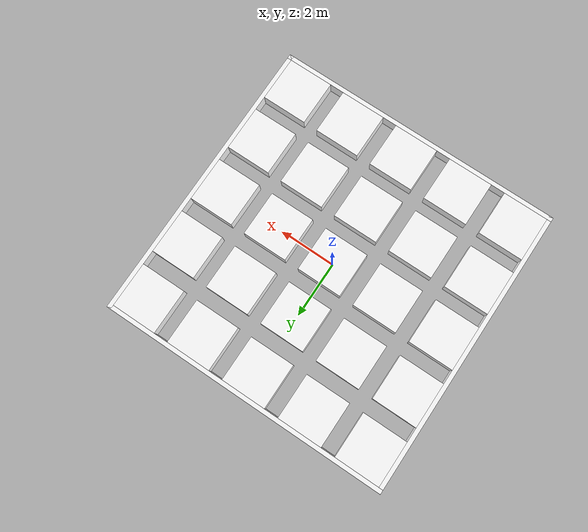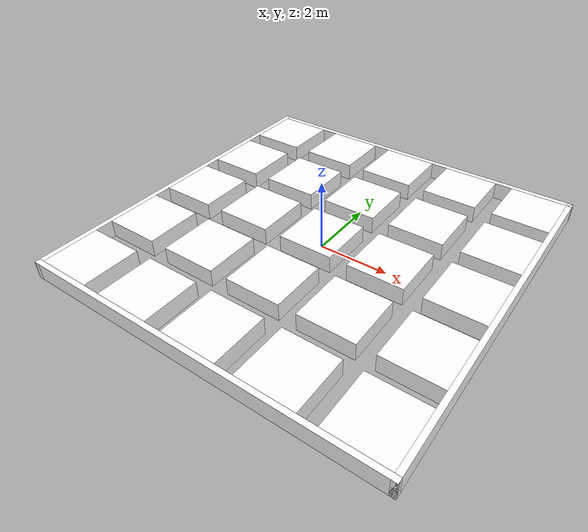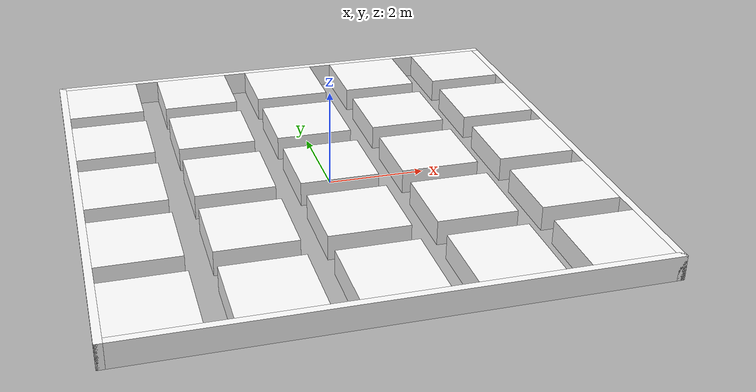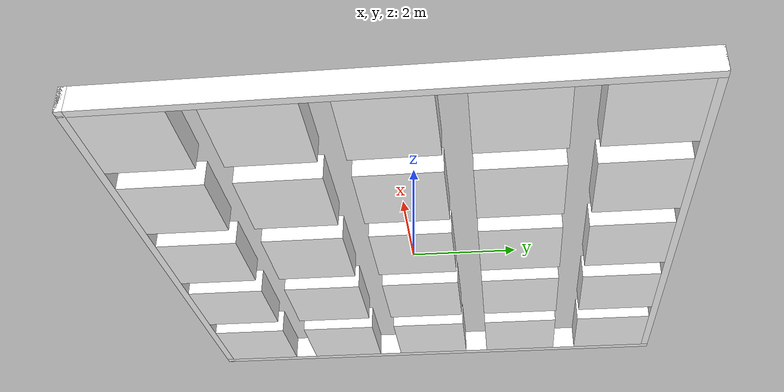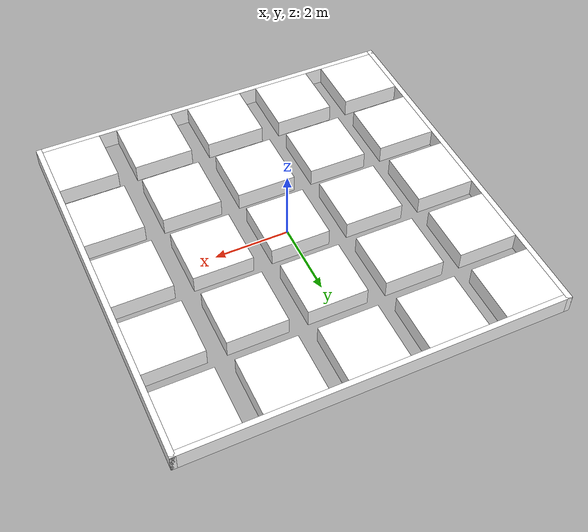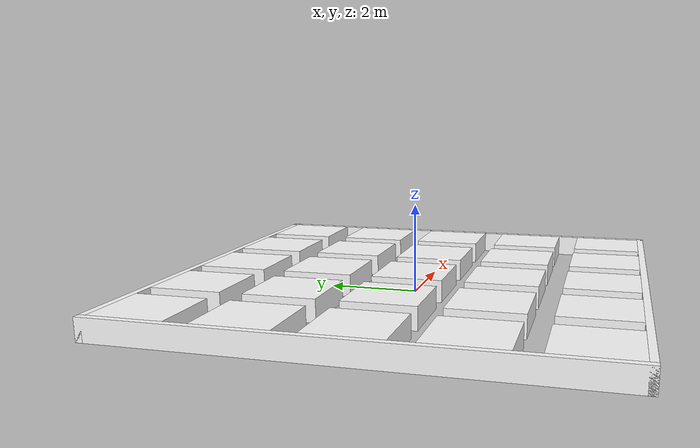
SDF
<?xml version="1.0" ?>
<sdf version="1.6">
  <!--Generated City-->
  <model name="city">
    <pose frame="">0 0 0 0 -0 0</pose>
    <link name="Wall_0_0">
      <collision name="Wall_0_0_Collision">
        <geometry>
          <box>
            <size>0.15 10.3 0.5</size>
          </box>
        </geometry>
        <pose frame="">0 0 0 0 -0 0</pose>
      </collision>
      <visual name="Wall_0_0_Visual">
        <pose frame="">0 0 0 0 -0 0</pose>
        <geometry>
          <box>
            <size>0.15 10.3 0.5</size>
          </box>
        </geometry>
        <material>
          <ambient>1 1 1 1</ambient>
        </material>
      </visual>
      <pose frame="">-5.075 0.0 0.25 0 -0 0</pose>
    </link>
    <link name="Wall_0_1">
      <collision name="Wall_0_1_Collision">
        <geometry>
          <box>
            <size>10.3 0.15 0.5</size>
          </box>
        </geometry>
        <pose frame="">0 0 0 0 -0 0</pose>
      </collision>
      <visual name="Wall_0_1_Visual">
        <pose frame="">0 0 0 0 -0 0</pose>
        <geometry>
          <box>
            <size>10.3 0.15 0.5</size>
          </box>
        </geometry>
        <material>
          <ambient>1 1 1 1</ambient>
        </material>
      </visual>
      <pose frame="">0.0 -5.075 0.25 0 -0 0</pose>
    </link>
    <link name="Wall_1_0">
      <collision name="Wall_1_0_Collision">
        <geometry>
          <box>
            <size>10.3 0.15 0.5</size>
          </box>
        </geometry>
        <pose frame="">0 0 0 0 -0 0</pose>
      </collision>
      <visual name="Wall_1_0_Visual">
        <pose frame="">0 0 0 0 -0 0</pose>
        <geometry>
          <box>
            <size>10.3 0.15 0.5</size>
          </box>
        </geometry>
        <material>
          <ambient>1 1 1 1</ambient>
        </material>
      </visual>
      <pose frame="">0.0 5.075 0.25 0 -0 0</pose>
    </link>
    <link name="Wall_1_1">
      <collision name="Wall_1_1_Collision">
        <geometry>
          <box>
            <size>0.15 10.3 0.5</size>
          </box>
        </geometry>
        <pose frame="">0 0 0 0 -0 0</pose>
      </collision>
      <visual name="Wall_1_1_Visual">
        <pose frame="">0 0 0 0 -0 0</pose>
        <geometry>
          <box>
            <size>0.15 10.3 0.5</size>
          </box>
        </geometry>
        <material>
          <ambient>1 1 1 1</ambient>
        </material>
      </visual>
      <pose frame="">5.075 0.0 0.25 0 -0 0</pose>
    </link>
    <link name="Box_-4.2_-4.2">
      <collision name="Box_-4.2_-4.2_Collision">
        <geometry>
          <box>
            <size>1.6 1.6 0.5</size>
          </box>
        </geometry>
        <pose frame="">0 0 0 0 -0 0</pose>
      </collision>
      <visual name="Box_-4.2_-4.2_Visual">
        <pose frame="">0 0 0 0 -0 0</pose>
        <geometry>
          <box>
            <size>1.6 1.6 0.5</size>
          </box>
        </geometry>
        <material>
          <ambient>1 1 1 1</ambient>
        </material>
      </visual>
      <pose frame="">-4.2 -4.2 0.25 0 -0 0</pose>
    </link>
    <link name="Box_-4.2_-2.1">
      <collision name="Box_-4.2_-2.1_Collision">
        <geometry>
          <box>
            <size>1.6 1.6 0.5</size>
          </box>
        </geometry>
        <pose frame="">0 0 0 0 -0 0</pose>
      </collision>
      <visual name="Box_-4.2_-2.1_Visual">
        <pose frame="">0 0 0 0 -0 0</pose>
        <geometry>
          <box>
            <size>1.6 1.6 0.5</size>
          </box>
        </geometry>
        <material>
          <ambient>1 1 1 1</ambient>
        </material>
      </visual>
      <pose frame="">-4.2 -2.1 0.25 0 -0 0</pose>
    </link>
    <link name="Box_-4.2_0.0">
      <collision name="Box_-4.2_0.0_Collision">
        <geometry>
          <box>
            <size>1.6 1.6 0.5</size>
          </box>
        </geometry>
        <pose frame="">0 0 0 0 -0 0</pose>
      </collision>
      <visual name="Box_-4.2_0.0_Visual">
        <pose frame="">0 0 0 0 -0 0</pose>
        <geometry>
          <box>
            <size>1.6 1.6 0.5</size>
          </box>
        </geometry>
        <material>
          <ambient>1 1 1 1</ambient>
        </material>
      </visual>
      <pose frame="">-4.2 0.0 0.25 0 -0 0</pose>
    </link>
    <link name="Box_-4.2_2.1">
      <collision name="Box_-4.2_2.1_Collision">
        <geometry>
          <box>
            <size>1.6 1.6 0.5</size>
          </box>
        </geometry>
        <pose frame="">0 0 0 0 -0 0</pose>
      </collision>
      <visual name="Box_-4.2_2.1_Visual">
        <pose frame="">0 0 0 0 -0 0</pose>
        <geometry>
          <box>
            <size>1.6 1.6 0.5</size>
          </box>
        </geometry>
        <material>
          <ambient>1 1 1 1</ambient>
        </material>
      </visual>
      <pose frame="">-4.2 2.1 0.25 0 -0 0</pose>
    </link>
    <link name="Box_-4.2_4.2">
      <collision name="Box_-4.2_4.2_Collision">
        <geometry>
          <box>
            <size>1.6 1.6 0.5</size>
          </box>
        </geometry>
        <pose frame="">0 0 0 0 -0 0</pose>
      </collision>
      <visual name="Box_-4.2_4.2_Visual">
        <pose frame="">0 0 0 0 -0 0</pose>
        <geometry>
          <box>
            <size>1.6 1.6 0.5</size>
          </box>
        </geometry>
        <material>
          <ambient>1 1 1 1</ambient>
        </material>
      </visual>
      <pose frame="">-4.2 4.2 0.25 0 -0 0</pose>
    </link>
    <link name="Box_-2.1_-4.2">
      <collision name="Box_-2.1_-4.2_Collision">
        <geometry>
          <box>
            <size>1.6 1.6 0.5</size>
          </box>
        </geometry>
        <pose frame="">0 0 0 0 -0 0</pose>
      </collision>
      <visual name="Box_-2.1_-4.2_Visual">
        <pose frame="">0 0 0 0 -0 0</pose>
        <geometry>
          <box>
            <size>1.6 1.6 0.5</size>
          </box>
        </geometry>
        <material>
          <ambient>1 1 1 1</ambient>
        </material>
      </visual>
      <pose frame="">-2.1 -4.2 0.25 0 -0 0</pose>
    </link>
    <link name="Box_-2.1_-2.1">
      <collision name="Box_-2.1_-2.1_Collision">
        <geometry>
          <box>
            <size>1.6 1.6 0.5</size>
          </box>
        </geometry>
        <pose frame="">0 0 0 0 -0 0</pose>
      </collision>
      <visual name="Box_-2.1_-2.1_Visual">
        <pose frame="">0 0 0 0 -0 0</pose>
        <geometry>
          <box>
            <size>1.6 1.6 0.5</size>
          </box>
        </geometry>
        <material>
          <ambient>1 1 1 1</ambient>
        </material>
      </visual>
      <pose frame="">-2.1 -2.1 0.25 0 -0 0</pose>
    </link>
    <link name="Box_-2.1_0.0">
      <collision name="Box_-2.1_0.0_Collision">
        <geometry>
          <box>
            <size>1.6 1.6 0.5</size>
          </box>
        </geometry>
        <pose frame="">0 0 0 0 -0 0</pose>
      </collision>
      <visual name="Box_-2.1_0.0_Visual">
        <pose frame="">0 0 0 0 -0 0</pose>
        <geometry>
          <box>
            <size>1.6 1.6 0.5</size>
          </box>
        </geometry>
        <material>
          <ambient>1 1 1 1</ambient>
        </material>
      </visual>
      <pose frame="">-2.1 0.0 0.25 0 -0 0</pose>
    </link>
    <link name="Box_-2.1_2.1">
      <collision name="Box_-2.1_2.1_Collision">
        <geometry>
          <box>
            <size>1.6 1.6 0.5</size>
          </box>
        </geometry>
        <pose frame="">0 0 0 0 -0 0</pose>
      </collision>
      <visual name="Box_-2.1_2.1_Visual">
        <pose frame="">0 0 0 0 -0 0</pose>
        <geometry>
          <box>
            <size>1.6 1.6 0.5</size>
          </box>
        </geometry>
        <material>
          <ambient>1 1 1 1</ambient>
        </material>
      </visual>
      <pose frame="">-2.1 2.1 0.25 0 -0 0</pose>
    </link>
    <link name="Box_-2.1_4.2">
      <collision name="Box_-2.1_4.2_Collision">
        <geometry>
          <box>
            <size>1.6 1.6 0.5</size>
          </box>
        </geometry>
        <pose frame="">0 0 0 0 -0 0</pose>
      </collision>
      <visual name="Box_-2.1_4.2_Visual">
        <pose frame="">0 0 0 0 -0 0</pose>
        <geometry>
          <box>
            <size>1.6 1.6 0.5</size>
          </box>
        </geometry>
        <material>
          <ambient>1 1 1 1</ambient>
        </material>
      </visual>
      <pose frame="">-2.1 4.2 0.25 0 -0 0</pose>
    </link>
    <link name="Box_0.0_-4.2">
      <collision name="Box_0.0_-4.2_Collision">
        <geometry>
          <box>
            <size>1.6 1.6 0.5</size>
          </box>
        </geometry>
        <pose frame="">0 0 0 0 -0 0</pose>
      </collision>
      <visual name="Box_0.0_-4.2_Visual">
        <pose frame="">0 0 0 0 -0 0</pose>
        <geometry>
          <box>
            <size>1.6 1.6 0.5</size>
          </box>
        </geometry>
        <material>
          <ambient>1 1 1 1</ambient>
        </material>
      </visual>
      <pose frame="">0.0 -4.2 0.25 0 -0 0</pose>
    </link>
    <link name="Box_0.0_-2.1">
      <collision name="Box_0.0_-2.1_Collision">
        <geometry>
          <box>
            <size>1.6 1.6 0.5</size>
          </box>
        </geometry>
        <pose frame="">0 0 0 0 -0 0</pose>
      </collision>
      <visual name="Box_0.0_-2.1_Visual">
        <pose frame="">0 0 0 0 -0 0</pose>
        <geometry>
          <box>
            <size>1.6 1.6 0.5</size>
          </box>
        </geometry>
        <material>
          <ambient>1 1 1 1</ambient>
        </material>
      </visual>
      <pose frame="">0.0 -2.1 0.25 0 -0 0</pose>
    </link>
    <link name="Box_0.0_0.0">
      <collision name="Box_0.0_0.0_Collision">
        <geometry>
          <box>
            <size>1.6 1.6 0.5</size>
          </box>
        </geometry>
        <pose frame="">0 0 0 0 -0 0</pose>
      </collision>
      <visual name="Box_0.0_0.0_Visual">
        <pose frame="">0 0 0 0 -0 0</pose>
        <geometry>
          <box>
            <size>1.6 1.6 0.5</size>
          </box>
        </geometry>
        <material>
          <ambient>1 1 1 1</ambient>
        </material>
      </visual>
      <pose frame="">0.0 0.0 0.25 0 -0 0</pose>
    </link>
    <link name="Box_0.0_2.1">
      <collision name="Box_0.0_2.1_Collision">
        <geometry>
          <box>
            <size>1.6 1.6 0.5</size>
          </box>
        </geometry>
        <pose frame="">0 0 0 0 -0 0</pose>
      </collision>
      <visual name="Box_0.0_2.1_Visual">
        <pose frame="">0 0 0 0 -0 0</pose>
        <geometry>
          <box>
            <size>1.6 1.6 0.5</size>
          </box>
        </geometry>
        <material>
          <ambient>1 1 1 1</ambient>
        </material>
      </visual>
      <pose frame="">0.0 2.1 0.25 0 -0 0</pose>
    </link>
    <link name="Box_0.0_4.2">
      <collision name="Box_0.0_4.2_Collision">
        <geometry>
          <box>
            <size>1.6 1.6 0.5</size>
          </box>
        </geometry>
        <pose frame="">0 0 0 0 -0 0</pose>
      </collision>
      <visual name="Box_0.0_4.2_Visual">
        <pose frame="">0 0 0 0 -0 0</pose>
        <geometry>
          <box>
            <size>1.6 1.6 0.5</size>
          </box>
        </geometry>
        <material>
          <ambient>1 1 1 1</ambient>
        </material>
      </visual>
      <pose frame="">0.0 4.2 0.25 0 -0 0</pose>
    </link>
    <link name="Box_2.1_-4.2">
      <collision name="Box_2.1_-4.2_Collision">
        <geometry>
          <box>
            <size>1.6 1.6 0.5</size>
          </box>
        </geometry>
        <pose frame="">0 0 0 0 -0 0</pose>
      </collision>
      <visual name="Box_2.1_-4.2_Visual">
        <pose frame="">0 0 0 0 -0 0</pose>
        <geometry>
          <box>
            <size>1.6 1.6 0.5</size>
          </box>
        </geometry>
        <material>
          <ambient>1 1 1 1</ambient>
        </material>
      </visual>
      <pose frame="">2.1 -4.2 0.25 0 -0 0</pose>
    </link>
    <link name="Box_2.1_-2.1">
      <collision name="Box_2.1_-2.1_Collision">
        <geometry>
          <box>
            <size>1.6 1.6 0.5</size>
          </box>
        </geometry>
        <pose frame="">0 0 0 0 -0 0</pose>
      </collision>
      <visual name="Box_2.1_-2.1_Visual">
        <pose frame="">0 0 0 0 -0 0</pose>
        <geometry>
          <box>
            <size>1.6 1.6 0.5</size>
          </box>
        </geometry>
        <material>
          <ambient>1 1 1 1</ambient>
        </material>
      </visual>
      <pose frame="">2.1 -2.1 0.25 0 -0 0</pose>
    </link>
    <link name="Box_2.1_0.0">
      <collision name="Box_2.1_0.0_Collision">
        <geometry>
          <box>
            <size>1.6 1.6 0.5</size>
          </box>
        </geometry>
        <pose frame="">0 0 0 0 -0 0</pose>
      </collision>
      <visual name="Box_2.1_0.0_Visual">
        <pose frame="">0 0 0 0 -0 0</pose>
        <geometry>
          <box>
            <size>1.6 1.6 0.5</size>
          </box>
        </geometry>
        <material>
          <ambient>1 1 1 1</ambient>
        </material>
      </visual>
      <pose frame="">2.1 0.0 0.25 0 -0 0</pose>
    </link>
    <link name="Box_2.1_2.1">
      <collision name="Box_2.1_2.1_Collision">
        <geometry>
          <box>
            <size>1.6 1.6 0.5</size>
          </box>
        </geometry>
        <pose frame="">0 0 0 0 -0 0</pose>
      </collision>
      <visual name="Box_2.1_2.1_Visual">
        <pose frame="">0 0 0 0 -0 0</pose>
        <geometry>
          <box>
            <size>1.6 1.6 0.5</size>
          </box>
        </geometry>
        <material>
          <ambient>1 1 1 1</ambient>
        </material>
      </visual>
      <pose frame="">2.1 2.1 0.25 0 -0 0</pose>
    </link>
    <link name="Box_2.1_4.2">
      <collision name="Box_2.1_4.2_Collision">
        <geometry>
          <box>
            <size>1.6 1.6 0.5</size>
          </box>
        </geometry>
        <pose frame="">0 0 0 0 -0 0</pose>
      </collision>
      <visual name="Box_2.1_4.2_Visual">
        <pose frame="">0 0 0 0 -0 0</pose>
        <geometry>
          <box>
            <size>1.6 1.6 0.5</size>
          </box>
        </geometry>
        <material>
          <ambient>1 1 1 1</ambient>
        </material>
      </visual>
      <pose frame="">2.1 4.2 0.25 0 -0 0</pose>
    </link>
    <link name="Box_4.2_-4.2">
      <collision name="Box_4.2_-4.2_Collision">
        <geometry>
          <box>
            <size>1.6 1.6 0.5</size>
          </box>
        </geometry>
        <pose frame="">0 0 0 0 -0 0</pose>
      </collision>
      <visual name="Box_4.2_-4.2_Visual">
        <pose frame="">0 0 0 0 -0 0</pose>
        <geometry>
          <box>
            <size>1.6 1.6 0.5</size>
          </box>
        </geometry>
        <material>
          <ambient>1 1 1 1</ambient>
        </material>
      </visual>
      <pose frame="">4.2 -4.2 0.25 0 -0 0</pose>
    </link>
    <link name="Box_4.2_-2.1">
      <collision name="Box_4.2_-2.1_Collision">
        <geometry>
          <box>
            <size>1.6 1.6 0.5</size>
          </box>
        </geometry>
        <pose frame="">0 0 0 0 -0 0</pose>
      </collision>
      <visual name="Box_4.2_-2.1_Visual">
        <pose frame="">0 0 0 0 -0 0</pose>
        <geometry>
          <box>
            <size>1.6 1.6 0.5</size>
          </box>
        </geometry>
        <material>
          <ambient>1 1 1 1</ambient>
        </material>
      </visual>
      <pose frame="">4.2 -2.1 0.25 0 -0 0</pose>
    </link>
    <link name="Box_4.2_0.0">
      <collision name="Box_4.2_0.0_Collision">
        <geometry>
          <box>
            <size>1.6 1.6 0.5</size>
          </box>
        </geometry>
        <pose frame="">0 0 0 0 -0 0</pose>
      </collision>
      <visual name="Box_4.2_0.0_Visual">
        <pose frame="">0 0 0 0 -0 0</pose>
        <geometry>
          <box>
            <size>1.6 1.6 0.5</size>
          </box>
        </geometry>
        <material>
          <ambient>1 1 1 1</ambient>
        </material>
      </visual>
      <pose frame="">4.2 0.0 0.25 0 -0 0</pose>
    </link>
    <link name="Box_4.2_2.1">
      <collision name="Box_4.2_2.1_Collision">
        <geometry>
          <box>
            <size>1.6 1.6 0.5</size>
          </box>
        </geometry>
        <pose frame="">0 0 0 0 -0 0</pose>
      </collision>
      <visual name="Box_4.2_2.1_Visual">
        <pose frame="">0 0 0 0 -0 0</pose>
        <geometry>
          <box>
            <size>1.6 1.6 0.5</size>
          </box>
        </geometry>
        <material>
          <ambient>1 1 1 1</ambient>
        </material>
      </visual>
      <pose frame="">4.2 2.1 0.25 0 -0 0</pose>
    </link>
    <link name="Box_4.2_4.2">
      <collision name="Box_4.2_4.2_Collision">
        <geometry>
          <box>
            <size>1.6 1.6 0.5</size>
          </box>
        </geometry>
        <pose frame="">0 0 0 0 -0 0</pose>
      </collision>
      <visual name="Box_4.2_4.2_Visual">
        <pose frame="">0 0 0 0 -0 0</pose>
        <geometry>
          <box>
            <size>1.6 1.6 0.5</size>
          </box>
        </geometry>
        <material>
          <ambient>1 1 1 1</ambient>
        </material>
      </visual>
      <pose frame="">4.2 4.2 0.25 0 -0 0</pose>
    </link>
    <static>1</static>
  </model>
</sdf>
